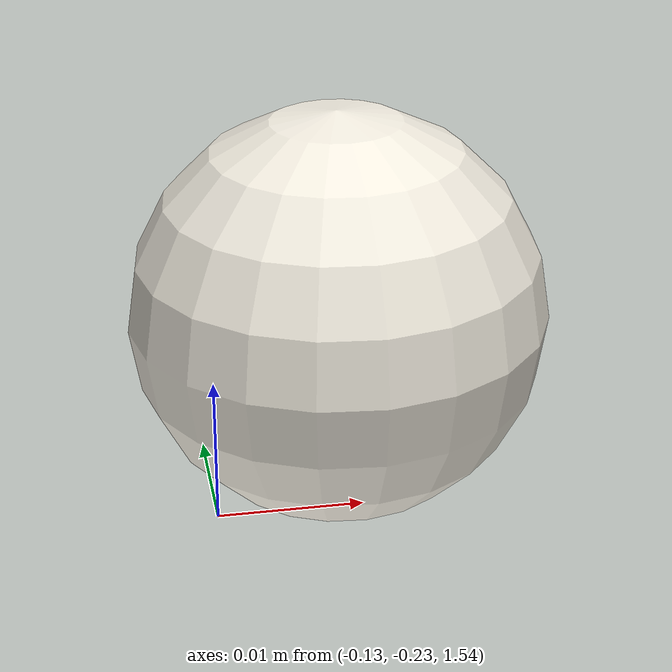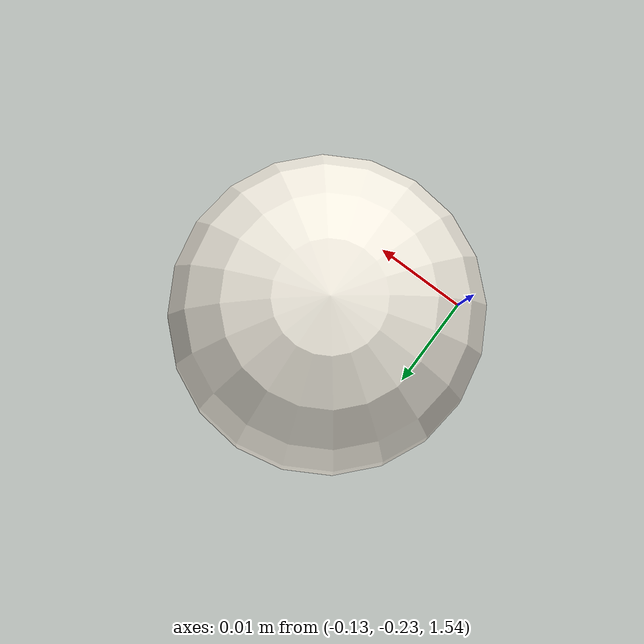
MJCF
<mujoco model="ping_pong_ball">
  <compiler angle="radian" coordinate="local"/>

  <asset>
    <material name="ping_pong_ball" rgba="0.95 0.93 0.88 1" specular="0.45" shininess="0.55"/>
  </asset>

  <worldbody>
    <!--
      Air spawn near ODC / battery holder / UT Longhorn / SG90.
      Sphere radius from ALIGN.txt: 0.015 m (Ø30 mm STEP; not scaled to 40 mm).
    -->
    <body name="ping_pong_ball" pos="-0.12 -0.22 1.55" euler="0.02 -0.01 0.05">
      <freejoint name="ping_pong_ball_free"/>
      <!-- ITTF Law 2.3.2 mass 2.7 g; ASSUMPTION thin-shell inertia ⅔ m r². -->
      <inertial pos="0 0 0" mass="0.0027" diaginertia="4.05e-7 4.05e-7 4.05e-7"/>
      <geom name="ping_pong_ball_sphere" type="sphere" size="0.015"
            material="ping_pong_ball" priority="1"
            friction="0.25 0.004 0.0001"
            solref="0.014 0.12" solimp="0.9 0.95 0.001 0.5 2"/>
    </body>
  </worldbody>
</mujoco>
